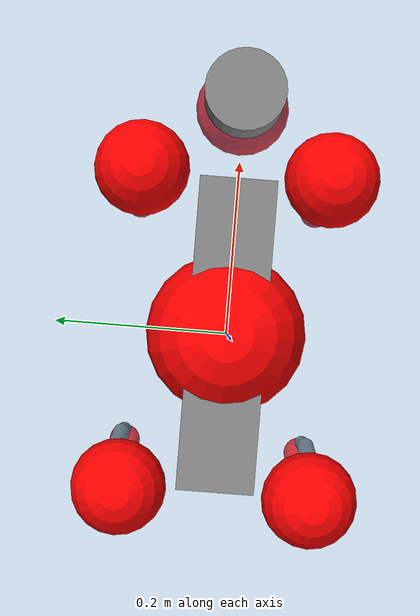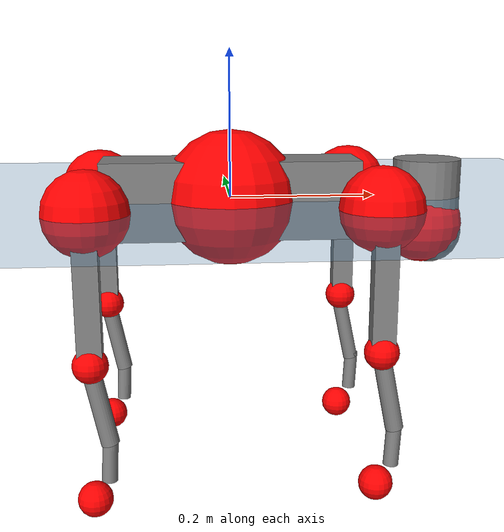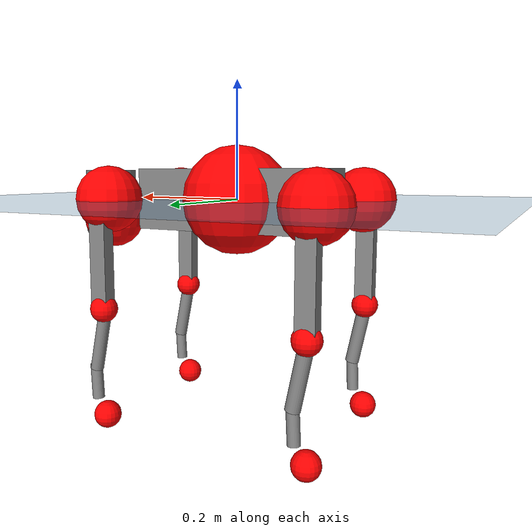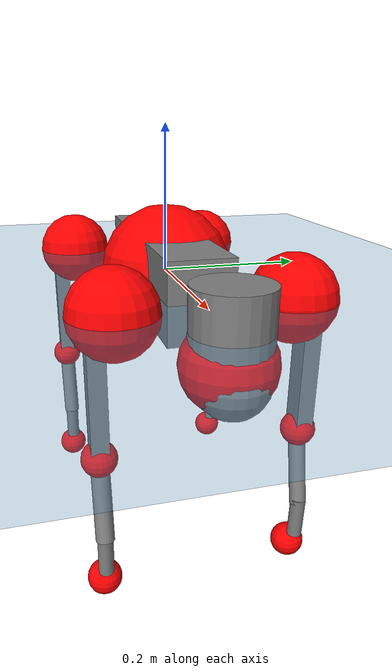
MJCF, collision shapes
<mujoco model="go2">
  <compiler angle="radian" assetdir="assets" balanceinertia="true" inertiafromgeom="false"/>

  <option timestep="0.005" density="1.2" viscosity="2e-05"/>

  <size nkey="1"/>

  <visual>
    <quality shadowsize="8192"/>
    <map shadowclip="0.5"/>
  </visual>

  <default>
    <default class="/">
      <geom contype="0" conaffinity="0" group="1" solref="-1000 -80"/>
      <site size="0.01 0.005 0.005" group="5"/>
      <general forcelimited="true" biastype="affine" gainprm="20" biasprm="0 -20 -0.5"/>
      <default class="go2">
        <joint armature="0.01" damping="0.01" frictionloss="0.2"/>
        <geom condim="1" margin="0.001"/>
        <default class="visual">
          <geom type="mesh" group="2"/>
        </default>
        <default class="collision">
          <geom group="3"/>
          <default class="foot">
            <geom size="0.022 0 0" condim="6" priority="1" friction="0.8 0.02 0.01" solimp="0.015 1 0.022"/>
          </default>
        </default>
        <default class="reward_collision_sphere">
          <geom group="5" rgba="1 0 0 1"/>
        </default>
      </default>
    </default>
  </default>

  <asset>
    <texture type="skybox" colorspace="auto" name="//unnamed_texture_0" builtin="gradient" rgb1="0.95 0.95 0.95" rgb2="0.95 0.95 0.95" width="100" height="600"/>
    <texture type="2d" colorspace="auto" name="texplane" builtin="checker" rgb1="0.345 0.575 0.748" rgb2="0.345 0.575 0.748" markrgb="1 1 1" width="512" height="512"/>
    <material name="MatPlane" class="/" texture="texplane" texuniform="true" texrepeat="2 2" specular="0.9"/>
    <material name="metal" class="/" rgba="0.9 0.95 0.95 1"/>
    <material name="black" class="/" rgba="0 0 0 1"/>
    <material name="white" class="/"/>
    <material name="gray" class="/" rgba="0.671705 0.692426 0.77427 1"/>
    <mesh name="base_0" class="/" file="base_0.obj"/>
    <mesh name="base_1" class="/" file="base_1.obj"/>
    <mesh name="base_2" class="/" file="base_2.obj"/>
    <mesh name="base_3" class="/" file="base_3.obj"/>
    <mesh name="base_4" class="/" file="base_4.obj"/>
    <mesh name="hip_0" class="/" file="hip_0.obj"/>
    <mesh name="hip_1" class="/" file="hip_1.obj"/>
    <mesh name="thigh_0" class="/" file="thigh_0.obj"/>
    <mesh name="thigh_1" class="/" file="thigh_1.obj"/>
    <mesh name="thigh_mirror_0" class="/" file="thigh_mirror_0.obj"/>
    <mesh name="thigh_mirror_1" class="/" file="thigh_mirror_1.obj"/>
    <mesh name="calf_0" class="/" file="calf_0.obj"/>
    <mesh name="calf_1" class="/" file="calf_1.obj"/>
    <mesh name="calf_mirror_0" class="/" file="calf_mirror_0.obj"/>
    <mesh name="calf_mirror_1" class="/" file="calf_mirror_1.obj"/>
    <mesh name="foot" class="/" file="foot.obj"/>
  </asset>

  <worldbody>
    <geom name="floor" class="/" size="100 100 0.125" type="plane" group="0" material="MatPlane"/>
    <light name="toplight_shadow" class="/" pos="0 0 5" dir="0.0990148 0.0990148 -0.990148" type="directional" ambient="0.04 0.04 0.04" diffuse="0.55 0.55 0.55" specular="0.12 0.12 0.12"/>
    <light name="toplight_fill" class="/" pos="0 0 5" dir="0.0990148 0.0990148 -0.990148" type="directional" castshadow="false" ambient="0.04 0.04 0.04" diffuse="0.3 0.3 0.3" specular="0.08 0.08 0.08"/>
    <body name="trunk" childclass="go2" pos="0.000125226 0.000728394 -0.000301353" quat="1 8.00391e-07 1.17385e-05 -1.41833e-05">
      <inertial pos="0.0203723 0.000508613 -0.00481567" quat="0.0015142 0.715755 -0.0012336 0.698348" mass="5.67189" diaginertia="0.0908991 0.0789971 0.0126861"/>
      <joint name="//unnamed_joint_0" type="free" armature="0" damping="0" frictionloss="0"/>
      <geom name="//unnamed_geom_1" class="visual" material="black" mesh="base_0"/>
      <geom name="//unnamed_geom_2" class="visual" material="black" mesh="base_1"/>
      <geom name="//unnamed_geom_3" class="visual" material="black" mesh="base_2"/>
      <geom name="//unnamed_geom_4" class="visual" material="white" mesh="base_3"/>
      <geom name="//unnamed_geom_5" class="visual" material="gray" mesh="base_4"/>
      <geom name="trunk_1" class="collision" size="0.175461 0.0436086 0.0531699" type="box"/>
      <geom name="trunk_2" class="collision" size="0.0466403 0.0419762" pos="0.275309 0 0.00876601" type="cylinder"/>
      <geom name="trunk_3" class="collision" size="0.0438418" pos="0.283037 0 -0.052596"/>
      <geom name="//unnamed_geom_9" class="reward_collision_sphere" size="0.0932805"/>
      <geom name="//unnamed_geom_10" class="reward_collision_sphere" size="0.0559683" pos="0.270479 0 -0.039447"/>
      <site name="imu" pos="-0.0286407 -0.00384331 0.0407555" size="0.00932805"/>
      <camera name="track" pos="0 -1.91164 0" quat="0.707107 0.707107 0 0" mode="trackcom"/>
      <camera name="ego_camera" pos="0.301391 0 0.039447" quat="-0.5 -0.5 0.5 0.5"/>
      <body name="FL_hip" pos="0.185332 0.0454536 0.0019449" quat="1 -0.000127223 0.000154191 -0.000151758">
        <inertial pos="-0.00522826 0.0020041 -0.000894505" quat="0.496426 0.498624 0.505851 0.499049" mass="0.55408" diaginertia="0.000743288 0.000481625 0.000249474"/>
        <joint name="FL_hip_joint" pos="0 0 0" axis="0.999994 0.00300834 0.00159031" stiffness="0.00279966" range="-1.03286 1.03721" armature="0.00943747" damping="0.00588133" frictionloss="0.178402"/>
        <geom name="//unnamed_geom_11" class="visual" material="metal" mesh="hip_0"/>
        <geom name="//unnamed_geom_12" class="visual" material="gray" mesh="hip_1"/>
        <geom name="//unnamed_geom_13" class="collision" size="0.042909 0.0186561" pos="0 0.0764655 0" quat="0.707107 0.707107 0 0" type="cylinder"/>
        <geom name="//unnamed_geom_14" class="reward_collision_sphere" size="0.0559683" pos="0 0.0669073 0"/>
        <body name="FL_thigh" pos="-0.000816329 0.0917654 0.00146965" quat="1 -7.46429e-05 -0.000116962 -0.000466341">
          <inertial pos="-0.00483489 -0.0219487 -0.0282944" quat="0.828809 0.0860497 -0.0195622 0.55253" mass="0.934401" diaginertia="0.00498206 0.00465282 0.000452321"/>
          <joint name="FL_thigh_joint" pos="0 0 0" axis="0.00133912 0.999999 -0.000253379" stiffness="0.00533039" range="-1.58 3.49479" armature="0.00905088" damping="0.00883751" frictionloss="0.187206"/>
          <geom name="//unnamed_geom_15" class="visual" material="metal" mesh="thigh_0"/>
          <geom name="//unnamed_geom_16" class="visual" material="gray" mesh="thigh_1"/>
          <geom name="//unnamed_geom_17" class="collision" size="0.0993437 0.0114269 0.0158577" pos="0 0 -0.093358" quat="0.707107 0 0.707107 0" type="box"/>
          <body name="FL_calf" pos="-0.00134969 -0.000825877 -0.186724" quat="1 0.000155201 -8.43447e-05 0.000284047">
            <inertial pos="0.00530095 -0.000484315 -0.12404" quat="0.710311 0.00159241 -0.00444704 0.703873" mass="0.19584" diaginertia="0.00126314 0.00116821 2.73515e-05"/>
            <joint name="FL_calf_joint" pos="0 0 0" axis="0.00154745 0.999984 0.00540685" stiffness="0.000585821" range="-2.73361 -0.83908" armature="0.0097406" damping="0.00168762" frictionloss="0.186351"/>
            <geom name="//unnamed_geom_18" class="visual" material="gray" mesh="calf_0"/>
            <geom name="//unnamed_geom_19" class="visual" material="black" mesh="calf_1"/>
            <geom name="FL_calf0" class="collision" size="0.0111937 0.0559683" pos="0.00772797 0 -0.052596" quat="0.994493 0 -0.104807 0" type="cylinder"/>
            <geom name="//unnamed_geom_21" class="collision" size="0.0102609 0.0303162" pos="0.0193199 0 -0.129737" quat="0.999688 0 0.0249974 0" type="cylinder"/>
            <geom name="//unnamed_geom_22" class="visual" pos="0 0 -0.186716" quat="1 0 0 0" material="black" mesh="foot"/>
            <geom name="FL_foot" class="foot" size="0.0181087" pos="-0.00193199 0 -0.186716"/>
            <geom name="//unnamed_geom_24" class="reward_collision_sphere" size="0.0233201"/>
            <geom name="//unnamed_geom_25" class="reward_collision_sphere" size="0.0233201" pos="-0.00193199 0 -0.186716"/>
            <site name="FL_foot" class="foot" pos="-0.00193199 0 -0.186716" size="0.00932805"/>
          </body>
        </body>
      </body>
      <body name="FR_hip" pos="0.187911 -0.0429088 0.000103853" quat="1 1.54271e-05 1.52899e-06 6.47487e-05">
        <inertial pos="-0.00540031 -0.00160533 1.16363e-06" quat="0.498554 0.505524 0.499663 0.496212" mass="0.550391" diaginertia="0.000737468 0.000469089 0.000245469"/>
        <joint name="FR_hip_joint" pos="0 0 0" axis="0.999982 -0.00457264 -0.00380751" stiffness="0.00483239" range="-1.05077 1.05508" armature="0.00951804" damping="0.0149805" frictionloss="0.187995"/>
        <geom name="//unnamed_geom_26" class="visual" pos="0 6.90115e-10 2.96004e-08" quat="4.63268e-05 1 0 0" material="metal" mesh="hip_0"/>
        <geom name="//unnamed_geom_27" class="visual" pos="0 1.11876e-09 -7.32132e-08" quat="4.63268e-05 1 0 0" material="gray" mesh="hip_1"/>
        <geom name="//unnamed_geom_28" class="collision" size="0.042909 0.0186561" pos="0 -0.0764655 0" quat="0.707107 0.707107 0 0" type="cylinder"/>
        <geom name="//unnamed_geom_29" class="reward_collision_sphere" size="0.0559683" pos="0 -0.0669073 0"/>
        <body name="FR_thigh" pos="0.000955433 -0.0904855 0.000395895" quat="1 -0.000129712 0.000187852 0.000126017">
          <inertial pos="-0.00391116 0.0209593 -0.0283822" quat="0.550087 -0.0183217 0.081573 0.830911" mass="0.918892" diaginertia="0.0049528 0.00463125 0.000451984"/>
          <joint name="FR_thigh_joint" pos="0 0 0" axis="-0.000603895 -1 -0.00046774" range="-3.4968 1.56976" armature="0.00921059" damping="0.0159761" frictionloss="0.186526"/>
          <geom name="//unnamed_geom_30" class="visual" material="metal" mesh="thigh_mirror_0"/>
          <geom name="//unnamed_geom_31" class="visual" material="gray" mesh="thigh_mirror_1"/>
          <geom name="//unnamed_geom_32" class="collision" size="0.0993437 0.0114269 0.0158577" pos="0 0 -0.093358" quat="0.707107 0 0.707107 0" type="box"/>
          <body name="FR_calf" pos="-7.51536e-05 -0.000124572 -0.185589" quat="1 -0.000106067 -1.13648e-05 0.000147633">
            <inertial pos="0.00575083 0.000769721 -0.125138" quat="0.704295 -0.00277612 0.00528192 0.709883" mass="0.195016" diaginertia="0.00125988 0.00116807 2.75955e-05"/>
            <joint name="FR_calf_joint" pos="0 0 0" axis="-0.00371916 -0.999992 -0.00164664" range="0.83984 2.71859" armature="0.00935812" damping="0.0108871" frictionloss="0.19059"/>
            <geom name="//unnamed_geom_33" class="visual" material="gray" mesh="calf_mirror_0"/>
            <geom name="//unnamed_geom_34" class="visual" material="black" mesh="calf_mirror_1"/>
            <geom name="FR_calf0" class="collision" size="0.0121265 0.0559683" pos="0.00965996 0 -0.052596" quat="0.995004 0 -0.0998334 0" type="cylinder"/>
            <geom name="//unnamed_geom_36" class="collision" size="0.0102609 0.0303162" pos="0.0193199 0 -0.129737" quat="0.999688 0 0.0249974 0" type="cylinder"/>
            <geom name="//unnamed_geom_37" class="visual" pos="0 0 -0.186716" quat="1 0 0 0" material="black" mesh="foot"/>
            <geom name="FR_foot" class="foot" size="0.0222476" pos="-0.00193199 0 -0.186716"/>
            <geom name="//unnamed_geom_39" class="reward_collision_sphere" size="0.0233201"/>
            <geom name="//unnamed_geom_40" class="reward_collision_sphere" size="0.0233201" pos="-0.00193199 0 -0.186716"/>
            <site name="FR_foot" class="foot" pos="-0.00193199 0 -0.186716" size="0.00932805"/>
          </body>
        </body>
      </body>
      <body name="RL_hip" pos="-0.187324 0.0442635 -0.00108107" quat="1 -0.000189264 0.000295493 4.24247e-05">
        <inertial pos="0.00514782 0.00284627 -0.000741297" quat="0.506289 0.496466 0.497444 0.499743" mass="0.551683" diaginertia="0.000742416 0.000474458 0.000248258"/>
        <joint name="RL_hip_joint" pos="0 0 0" axis="-0.999791 -0.00919131 0.0182833" stiffness="0.00033565" range="-1.03964 1.05322" armature="0.00932901" damping="0.0144704" frictionloss="0.190117"/>
        <geom name="//unnamed_geom_41" class="visual" pos="-7.78777e-10 0 -1.52658e-07" quat="4.63268e-05 0 1 0" material="metal" mesh="hip_0"/>
        <geom name="//unnamed_geom_42" class="visual" pos="-1.26249e-09 0 -1.35386e-07" quat="4.63268e-05 0 1 0" material="gray" mesh="hip_1"/>
        <geom name="//unnamed_geom_43" class="collision" size="0.042909 0.0186561" pos="0 0.0764655 0" quat="0.707107 0.707107 0 0" type="cylinder"/>
        <geom name="//unnamed_geom_44" class="reward_collision_sphere" size="0.0559683" pos="0 0.0669073 0"/>
        <body name="RL_thigh" pos="0.000569143 0.0910315 -0.000777874" quat="1 8.88339e-05 -0.000201037 -5.33762e-05">
          <inertial pos="-0.00339684 -0.0208077 -0.0287483" quat="0.829141 0.0885549 -0.0212302 0.551573" mass="0.943684" diaginertia="0.00497797 0.00465156 0.000456864"/>
          <joint name="RL_thigh_joint" pos="0 0 0" axis="0.000852748 0.999998 0.0017409" stiffness="0.000108292" range="-0.507811 4.52289" armature="0.0093348" damping="0.0105138" frictionloss="0.189425"/>
          <geom name="//unnamed_geom_45" class="visual" material="metal" mesh="thigh_0"/>
          <geom name="//unnamed_geom_46" class="visual" material="gray" mesh="thigh_1"/>
          <geom name="//unnamed_geom_47" class="collision" size="0.0993437 0.0114269 0.0158577" pos="0 0 -0.093358" quat="0.707107 0 0.707107 0" type="box"/>
          <body name="RL_calf" pos="0.000813518 -0.00130236 -0.186819" quat="1 -9.99324e-05 8.44642e-05 6.86115e-05">
            <inertial pos="0.00634881 -0.000638248 -0.123893" quat="0.710222 0.00148093 -0.00438785 0.703962" mass="0.191786" diaginertia="0.00123506 0.00115749 2.72202e-05"/>
            <joint name="RL_calf_joint" pos="0 0 0" axis="0.00101667 0.999921 0.0124936" range="-2.71315 -0.821186" armature="0.00938819" damping="0" frictionloss="0.185432"/>
            <geom name="//unnamed_geom_48" class="visual" material="gray" mesh="calf_0"/>
            <geom name="//unnamed_geom_49" class="visual" material="black" mesh="calf_1"/>
            <geom name="RL_calf0" class="collision" size="0.0121265 0.0559683" pos="0.00965996 0 -0.052596" quat="0.995004 0 -0.0998334 0" type="cylinder"/>
            <geom name="//unnamed_geom_51" class="collision" size="0.0102609 0.0303162" pos="0.0193199 0 -0.129737" quat="0.999688 0 0.0249974 0" type="cylinder"/>
            <geom name="//unnamed_geom_52" class="visual" pos="0 0 -0.186716" quat="1 0 0 0" material="black" mesh="foot"/>
            <geom name="RL_foot" class="foot" size="0.0178259" pos="-0.00193199 0 -0.186716"/>
            <geom name="//unnamed_geom_54" class="reward_collision_sphere" size="0.0233201"/>
            <geom name="//unnamed_geom_55" class="reward_collision_sphere" size="0.0233201" pos="-0.00193199 0 -0.186716"/>
            <site name="RL_foot" class="foot" pos="-0.00193199 0 -0.186716" size="0.00932805"/>
          </body>
        </body>
      </body>
      <body name="RR_hip" pos="-0.186112 -0.045118 -0.000341016" quat="1 0.000178723 8.29929e-05 -3.11996e-07">
        <inertial pos="0.00559564 -0.0023036 0.000906451" quat="0.500918 0.497522 0.496636 0.504882" mass="0.544733" diaginertia="0.000729158 0.00047107 0.000246021"/>
        <joint name="RR_hip_joint" pos="0 0 0" axis="-1 0.000337422 -0.000465317" range="-1.04363 1.04964" armature="0.00928822" damping="0.00697029" frictionloss="0.184199"/>
        <geom name="//unnamed_geom_56" class="visual" pos="7.78424e-10 6.90115e-10 -1.82259e-07" quat="2.14617e-09 4.63268e-05 4.63268e-05 -1" material="metal" mesh="hip_0"/>
        <geom name="//unnamed_geom_57" class="visual" pos="1.26336e-09 1.11876e-09 -6.21728e-08" quat="2.14617e-09 4.63268e-05 4.63268e-05 -1" material="gray" mesh="hip_1"/>
        <geom name="//unnamed_geom_58" class="collision" size="0.042909 0.0186561" pos="0 -0.0764655 0" quat="0.707107 0.707107 0 0" type="cylinder"/>
        <geom name="//unnamed_geom_59" class="reward_collision_sphere" size="0.0559683" pos="0 -0.0669073 0"/>
        <body name="RR_thigh" pos="0.000353985 -0.0925518 -0.00177065" quat="1 1.30091e-05 8.62541e-05 -0.000142997">
          <inertial pos="-0.00336968 0.0215264 -0.0295723" quat="0.552918 -0.0190408 0.0833586 0.828837" mass="0.943865" diaginertia="0.00503715 0.00471633 0.000459427"/>
          <joint name="RR_thigh_joint" pos="0 0 0" axis="-0.00113469 -0.999999 0.00050627" stiffness="0.0012692" range="-4.53716 0.50824" armature="0.00942434" damping="0.0135534" frictionloss="0.189263"/>
          <geom name="//unnamed_geom_60" class="visual" material="metal" mesh="thigh_mirror_0"/>
          <geom name="//unnamed_geom_61" class="visual" material="gray" mesh="thigh_mirror_1"/>
          <geom name="//unnamed_geom_62" class="collision" size="0.0993437 0.0114269 0.0158577" pos="0 0 -0.093358" quat="0.707107 0 0.707107 0" type="box"/>
          <body name="RR_calf" pos="-0.00050481 -0.000481881 -0.187412" quat="1 -0.000104428 -0.000354361 6.52756e-05">
            <inertial pos="0.00674604 0.000686167 -0.124522" quat="0.703501 -0.00450052 0.00152142 0.710678" mass="0.196673" diaginertia="0.00125367 0.00116296 2.76765e-05"/>
            <joint name="RR_calf_joint" pos="0 0 0" axis="-0.00120137 -0.999998 0.00138237" stiffness="0.00179794" range="0.851808 2.72691" armature="0.0093697" damping="0.0111631" frictionloss="0.186219"/>
            <geom name="//unnamed_geom_63" class="visual" material="gray" mesh="calf_mirror_0"/>
            <geom name="//unnamed_geom_64" class="visual" material="black" mesh="calf_mirror_1"/>
            <geom name="RR_calf0" class="collision" size="0.0121265 0.0559683" pos="0.00965996 0 -0.052596" quat="0.995004 0 -0.0998334 0" type="cylinder"/>
            <geom name="//unnamed_geom_66" class="collision" size="0.0102609 0.0303162" pos="0.0193199 0 -0.129737" quat="0.999688 0 0.0249974 0" type="cylinder"/>
            <geom name="//unnamed_geom_67" class="visual" pos="0 0 -0.186716" quat="1 0 0 0" material="black" mesh="foot"/>
            <geom name="RR_foot" class="foot" size="0.0215759" pos="-0.00193199 0 -0.186716"/>
            <geom name="//unnamed_geom_69" class="reward_collision_sphere" size="0.0233201"/>
            <geom name="//unnamed_geom_70" class="reward_collision_sphere" size="0.0233201" pos="-0.00193199 0 -0.186716"/>
            <site name="RR_foot" class="foot" pos="-0.00193199 0 -0.186716" size="0.00932805"/>
          </body>
        </body>
      </body>
    </body>
  </worldbody>

  <contact>
    <pair class="/" geom1="floor" geom2="FL_foot" name="//unnamed_contact_0"/>
    <pair class="/" geom1="floor" geom2="FR_foot" name="//unnamed_contact_1"/>
    <pair class="/" geom1="floor" geom2="RL_foot" name="//unnamed_contact_2"/>
    <pair class="/" geom1="floor" geom2="RR_foot" name="//unnamed_contact_3"/>
  </contact>

  <actuator>
    <general name="FL_hip" class="/" joint="FL_hip_joint" forcerange="-22.6282 22.6282" gainprm="18.8148" biasprm="0 -18.8148 -0.471089"/>
    <general name="FL_thigh" class="/" joint="FL_thigh_joint" forcerange="-22.8691 22.8691" gainprm="18.8148" biasprm="0 -18.8148 -0.471089"/>
    <general name="FL_calf" class="/" joint="FL_calf_joint" forcerange="-41.4763 41.4763" gainprm="18.8148" biasprm="0 -18.8148 -0.471089"/>
    <general name="FR_hip" class="/" joint="FR_hip_joint" forcerange="-22.1635 22.1635" gainprm="18.8148" biasprm="0 -18.8148 -0.471089"/>
    <general name="FR_thigh" class="/" joint="FR_thigh_joint" forcerange="-22.1969 22.1969" gainprm="18.8148" biasprm="0 -18.8148 -0.471089"/>
    <general name="FR_calf" class="/" joint="FR_calf_joint" forcerange="-40.8268 40.8268" gainprm="18.8148" biasprm="0 -18.8148 -0.471089"/>
    <general name="RL_hip" class="/" joint="RL_hip_joint" forcerange="-21.6985 21.6985" gainprm="18.8148" biasprm="0 -18.8148 -0.471089"/>
    <general name="RL_thigh" class="/" joint="RL_thigh_joint" forcerange="-22.2113 22.2113" gainprm="18.8148" biasprm="0 -18.8148 -0.471089"/>
    <general name="RL_calf" class="/" joint="RL_calf_joint" forcerange="-43.5016 43.5016" gainprm="18.8148" biasprm="0 -18.8148 -0.471089"/>
    <general name="RR_hip" class="/" joint="RR_hip_joint" forcerange="-21.7677 21.7677" gainprm="18.8148" biasprm="0 -18.8148 -0.471089"/>
    <general name="RR_thigh" class="/" joint="RR_thigh_joint" forcerange="-22.1484 22.1484" gainprm="18.8148" biasprm="0 -18.8148 -0.471089"/>
    <general name="RR_calf" class="/" joint="RR_calf_joint" forcerange="-42.1556 42.1556" gainprm="18.8148" biasprm="0 -18.8148 -0.471089"/>
  </actuator>

  <sensor>
    <gyro site="imu" name="imu_angular_velocity"/>
    <velocimeter site="imu" name="imu_linear_velocity"/>
    <framelinvel objtype="site" objname="FL_foot" name="FL_foot_global_linear_velocity"/>
    <framelinvel objtype="site" objname="FR_foot" name="FR_foot_global_linear_velocity"/>
    <framelinvel objtype="site" objname="RL_foot" name="RL_foot_global_linear_velocity"/>
    <framelinvel objtype="site" objname="RR_foot" name="RR_foot_global_linear_velocity"/>
  </sensor>

  <keyframe>
    <key name="home" qpos="0 0 0.325 1 0 0 0 0.1 0.8 -1.5 -0.1 -0.8 1.5 -0.1 0.8 -1.5 0.1 -0.8 1.5"/>
  </keyframe>
</mujoco>
